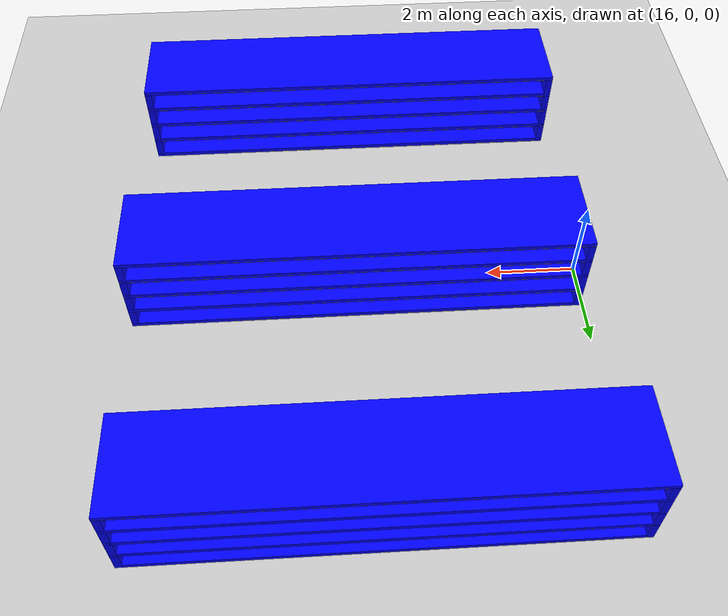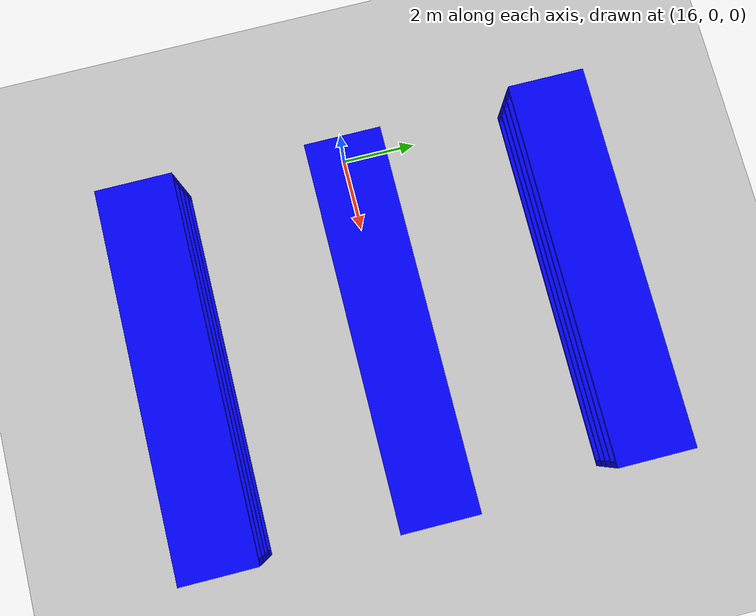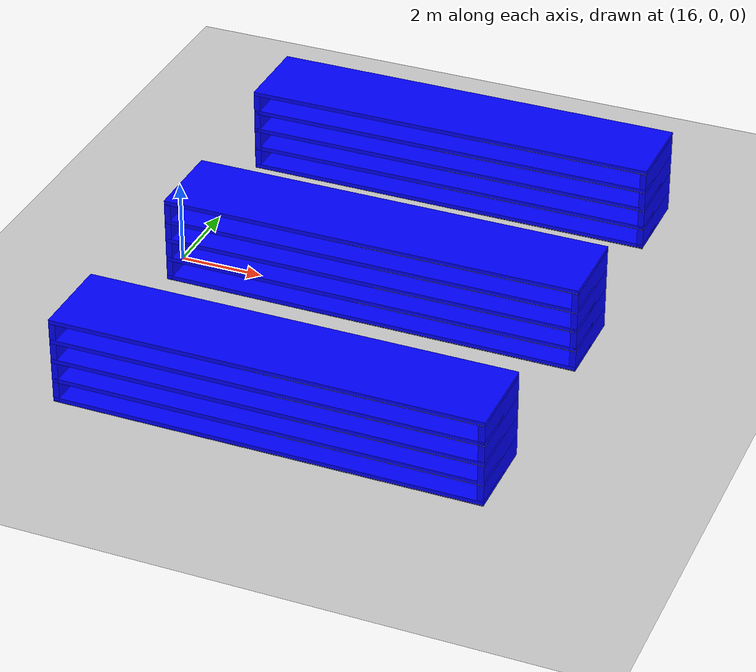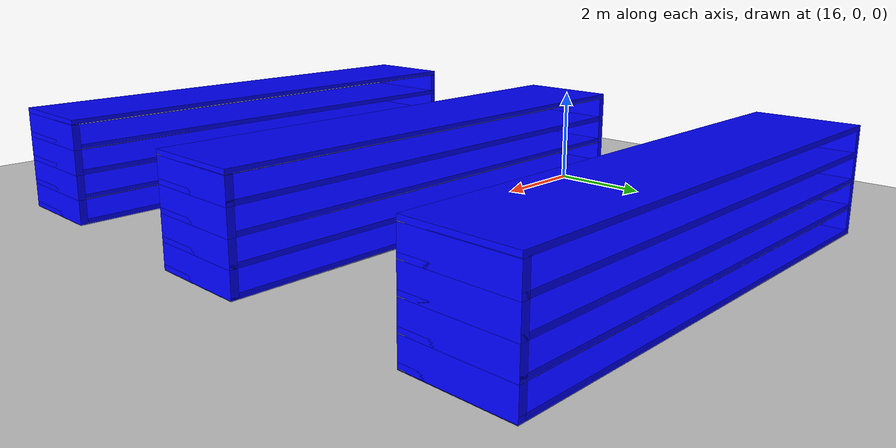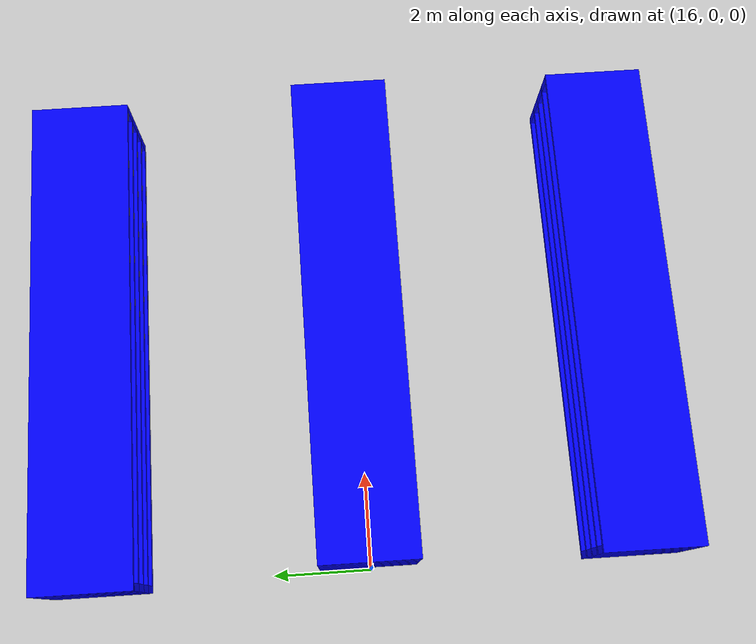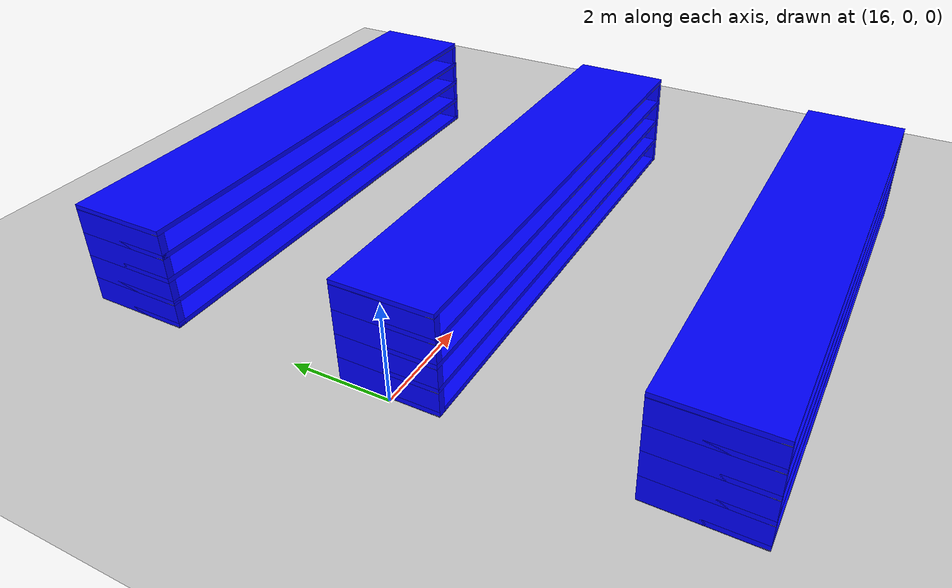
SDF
<sdf version="1.6">
 <world name="default">
  <model name="ground_plane">
   <static>1</static>
   <link name="link">
    <collision name="collision">
     <geometry><plane><normal>0 0 1</normal><size>100 100</size></plane></geometry>
     <surface><friction><ode><mu>100</mu><mu2>50</mu2></ode></friction></surface>
    </collision>
    <visual name="visual">
     <cast_shadows>0</cast_shadows>
     <geometry><plane><normal>0 0 1</normal><size>100 100</size></plane></geometry>
     <material>
      <script><uri>file://media/materials/scripts/gazebo.material</uri><name>Gazebo/Grey</name></script>
     </material>
    </visual>
   </link>
  </model>
  <model name="blue_shelf_3">
   <pose>21.0531 0.048222 0 0 -0 0</pose>
   <link name="Floor_18">
    <collision name="Floor_18_Collision">
     <geometry><box><size>10 2 0.1</size></box></geometry>
     <pose>0 0 0.05 0 -0 0</pose>
    </collision>
    <visual name="Floor_18_Visual">
     <pose>0 0 0.05 0 -0 0</pose>
     <geometry><box><size>10 2 0.1</size></box></geometry>
     <material>
      <script><uri>file://media/materials/scripts/gazebo.material</uri><name>Gazebo/Grey</name></script>
      <ambient>0 0 1 1</ambient>
     </material>
    </visual>
    <pose>0 0 0.01 0 -0 0</pose>
   </link>
   <link name="Floor_23">
    <collision name="Floor_23_Collision">
     <geometry><box><size>10 2 0.1</size></box></geometry>
     <pose>0 0 0.05 0 -0 0</pose>
    </collision>
    <visual name="Floor_23_Visual">
     <pose>0 0 0.05 0 -0 0</pose>
     <geometry><box><size>10 2 0.1</size></box></geometry>
     <material>
      <script><uri>file://media/materials/scripts/gazebo.material</uri><name>Gazebo/Grey</name></script>
      <ambient>0 0 1 1</ambient>
     </material>
    </visual>
    <pose>0 0 0.51 0 -0 0</pose>
   </link>
   <link name="Floor_24">
    <collision name="Floor_24_Collision">
     <geometry><box><size>10 2 0.1</size></box></geometry>
     <pose>0 0 0.05 0 -0 0</pose>
    </collision>
    <visual name="Floor_24_Visual">
     <pose>0 0 0.05 0 -0 0</pose>
     <geometry><box><size>10 2 0.1</size></box></geometry>
     <material>
      <script><uri>file://media/materials/scripts/gazebo.material</uri><name>Gazebo/Grey</name></script>
      <ambient>0 0 1 1</ambient>
     </material>
    </visual>
    <pose>0 0 1.01 0 -0 0</pose>
   </link>
   <link name="Floor_25">
    <collision name="Floor_25_Collision">
     <geometry><box><size>10 2 0.1</size></box></geometry>
     <pose>0 0 0.05 0 -0 0</pose>
    </collision>
    <visual name="Floor_25_Visual">
     <pose>0 0 0.05 0 -0 0</pose>
     <geometry><box><size>10 2 0.1</size></box></geometry>
     <material>
      <script><uri>file://media/materials/scripts/gazebo.material</uri><name>Gazebo/Grey</name></script>
      <ambient>0 0 1 1</ambient>
     </material>
    </visual>
    <pose>0 0 1.51 0 -0 0</pose>
   </link>
   <link name="Floor_26">
    <collision name="Floor_26_Collision">
     <geometry><box><size>10 2 0.1</size></box></geometry>
     <pose>0 0 0.05 0 -0 0</pose>
    </collision>
    <visual name="Floor_26_Visual">
     <pose>0 0 0.05 0 -0 0</pose>
     <geometry><box><size>10 2 0.1</size></box></geometry>
     <material>
      <script><uri>file://media/materials/scripts/gazebo.material</uri><name>Gazebo/Grey</name></script>
      <ambient>0 0 1 1</ambient>
     </material>
    </visual>
    <pose>0 0 2.01 0 -0 0</pose>
   </link>
   <link name="Wall_111">
    <collision name="Wall_111_Collision">
     <geometry><box><size>10 0.15 0.01</size></box></geometry>
     <pose>0 0 0.005 0 -0 0</pose>
    </collision>
    <visual name="Wall_111_Visual">
     <pose>0 0 0.005 0 -0 0</pose>
     <geometry><box><size>10 0.15 0.01</size></box></geometry>
     <material>
      <script><uri>file://media/materials/scripts/gazebo.material</uri><name>Gazebo/Grey</name></script>
      <ambient>1 1 1 1</ambient>
     </material>
    </visual>
    <pose>0 0.925 0.51 0 -0 0</pose>
   </link>
   <link name="Wall_112">
    <collision name="Wall_112_Collision">
     <geometry><box><size>2 0.15 0.5</size></box></geometry>
     <pose>0 0 0.25 0 -0 0</pose>
    </collision>
    <visual name="Wall_112_Visual">
     <pose>0 0 0.25 0 -0 0</pose>
     <geometry><box><size>2 0.15 0.5</size></box></geometry>
     <material>
      <script><uri>file://media/materials/scripts/gazebo.material</uri><name>Gazebo/Grey</name></script>
      <ambient>0 0 1 1</ambient>
     </material>
    </visual>
    <pose>4.925 0 0.51 0 0 -1.5708</pose>
   </link>
   <link name="Wall_113">
    <collision name="Wall_113_Collision">
     <geometry><box><size>10 0.15 0.01</size></box></geometry>
     <pose>0 0 0.005 0 -0 0</pose>
    </collision>
    <visual name="Wall_113_Visual">
     <pose>0 0 0.005 0 -0 0</pose>
     <geometry><box><size>10 0.15 0.01</size></box></geometry>
     <material>
      <script><uri>file://media/materials/scripts/gazebo.material</uri><name>Gazebo/Grey</name></script>
      <ambient>1 1 1 1</ambient>
     </material>
    </visual>
    <pose>0 -0.925 0.51 0 -0 3.14159</pose>
   </link>
   <link name="Wall_114">
    <collision name="Wall_114_Collision">
     <geometry><box><size>2 0.15 0.5</size></box></geometry>
     <pose>0 0 0.25 0 -0 0</pose>
    </collision>
    <visual name="Wall_114_Visual">
     <pose>0 0 0.25 0 -0 0</pose>
     <geometry><box><size>2 0.15 0.5</size></box></geometry>
     <material>
      <script><uri>file://media/materials/scripts/gazebo.material</uri><name>Gazebo/Grey</name></script>
      <ambient>0 0 1 1</ambient>
     </material>
    </visual>
    <pose>-4.925 0 0.51 0 -0 1.5708</pose>
   </link>
   <link name="Wall_115">
    <collision name="Wall_115_Collision">
     <geometry><box><size>10 0.15 0.01</size></box></geometry>
     <pose>0 0 0.005 0 -0 0</pose>
    </collision>
    <visual name="Wall_115_Visual">
     <pose>0 0 0.005 0 -0 0</pose>
     <geometry><box><size>10 0.15 0.01</size></box></geometry>
     <material>
      <script><uri>file://media/materials/scripts/gazebo.material</uri><name>Gazebo/Grey</name></script>
      <ambient>1 1 1 1</ambient>
     </material>
    </visual>
    <pose>0 0.925 1.01 0 -0 0</pose>
   </link>
   <link name="Wall_116">
    <collision name="Wall_116_Collision">
     <geometry><box><size>2 0.15 0.5</size></box></geometry>
     <pose>0 0 0.25 0 -0 0</pose>
    </collision>
    <visual name="Wall_116_Visual">
     <pose>0 0 0.25 0 -0 0</pose>
     <geometry><box><size>2 0.15 0.5</size></box></geometry>
     <material>
      <script><uri>file://media/materials/scripts/gazebo.material</uri><name>Gazebo/Grey</name></script>
      <ambient>0 0 1 1</ambient>
     </material>
    </visual>
    <pose>4.925 0 1.01 0 0 -1.5708</pose>
   </link>
   <link name="Wall_117">
    <collision name="Wall_117_Collision">
     <geometry><box><size>10 0.15 0.01</size></box></geometry>
     <pose>0 0 0.005 0 -0 0</pose>
    </collision>
    <visual name="Wall_117_Visual">
     <pose>0 0 0.005 0 -0 0</pose>
     <geometry><box><size>10 0.15 0.01</size></box></geometry>
     <material>
      <script><uri>file://media/materials/scripts/gazebo.material</uri><name>Gazebo/Grey</name></script>
      <ambient>1 1 1 1</ambient>
     </material>
    </visual>
    <pose>0 -0.925 1.01 0 -0 3.14159</pose>
   </link>
   <link name="Wall_118">
    <collision name="Wall_118_Collision">
     <geometry><box><size>2 0.15 0.5</size></box></geometry>
     <pose>0 0 0.25 0 -0 0</pose>
    </collision>
    <visual name="Wall_118_Visual">
     <pose>0 0 0.25 0 -0 0</pose>
     <geometry><box><size>2 0.15 0.5</size></box></geometry>
     <material>
      <script><uri>file://media/materials/scripts/gazebo.material</uri><name>Gazebo/Grey</name></script>
      <ambient>0 0 1 1</ambient>
     </material>
    </visual>
    <pose>-4.925 0 1.01 0 -0 1.5708</pose>
   </link>
   <link name="Wall_119">
    <collision name="Wall_119_Collision">
     <geometry><box><size>10 0.15 0.01</size></box></geometry>
     <pose>0 0 0.005 0 -0 0</pose>
    </collision>
    <visual name="Wall_119_Visual">
     <pose>0 0 0.005 0 -0 0</pose>
     <geometry><box><size>10 0.15 0.01</size></box></geometry>
     <material>
      <script><uri>file://media/materials/scripts/gazebo.material</uri><name>Gazebo/Grey</name></script>
      <ambient>1 1 1 1</ambient>
     </material>
    </visual>
    <pose>0 0.925 1.51 0 -0 0</pose>
   </link>
   <link name="Wall_120">
    <collision name="Wall_120_Collision">
     <geometry><box><size>2 0.15 0.5</size></box></geometry>
     <pose>0 0 0.25 0 -0 0</pose>
    </collision>
    <visual name="Wall_120_Visual">
     <pose>0 0 0.25 0 -0 0</pose>
     <geometry><box><size>2 0.15 0.5</size></box></geometry>
     <material>
      <script><uri>file://media/materials/scripts/gazebo.material</uri><name>Gazebo/Grey</name></script>
      <ambient>0 0 1 1</ambient>
     </material>
    </visual>
    <pose>4.925 0 1.51 0 0 -1.5708</pose>
   </link>
   <link name="Wall_121">
    <collision name="Wall_121_Collision">
     <geometry><box><size>10 0.15 0.01</size></box></geometry>
     <pose>0 0 0.005 0 -0 0</pose>
    </collision>
    <visual name="Wall_121_Visual">
     <pose>0 0 0.005 0 -0 0</pose>
     <geometry><box><size>10 0.15 0.01</size></box></geometry>
     <material>
      <script><uri>file://media/materials/scripts/gazebo.material</uri><name>Gazebo/Grey</name></script>
      <ambient>1 1 1 1</ambient>
     </material>
    </visual>
    <pose>0 -0.925 1.51 0 -0 3.14159</pose>
   </link>
   <link name="Wall_122">
    <collision name="Wall_122_Collision">
     <geometry><box><size>2 0.15 0.5</size></box></geometry>
     <pose>0 0 0.25 0 -0 0</pose>
    </collision>
    <visual name="Wall_122_Visual">
     <pose>0 0 0.25 0 -0 0</pose>
     <geometry><box><size>2 0.15 0.5</size></box></geometry>
     <material>
      <script><uri>file://media/materials/scripts/gazebo.material</uri><name>Gazebo/Grey</name></script>
      <ambient>0 0 1 1</ambient>
     </material>
    </visual>
    <pose>-4.925 0 1.51 0 -0 1.5708</pose>
   </link>
   <link name="Wall_123">
    <collision name="Wall_123_Collision">
     <geometry><box><size>10 0.15 0.01</size></box></geometry>
     <pose>0 0 0.005 0 -0 0</pose>
    </collision>
    <visual name="Wall_123_Visual">
     <pose>0 0 0.005 0 -0 0</pose>
     <geometry><box><size>10 0.15 0.01</size></box></geometry>
     <material>
      <script><uri>file://media/materials/scripts/gazebo.material</uri><name>Gazebo/Grey</name></script>
      <ambient>1 1 1 1</ambient>
     </material>
    </visual>
    <pose>0 0.925 2.01 0 -0 0</pose>
   </link>
   <link name="Wall_124">
    <collision name="Wall_124_Collision">
     <geometry><box><size>2 0.15 0.01</size></box></geometry>
     <pose>0 0 0.005 0 -0 0</pose>
    </collision>
    <visual name="Wall_124_Visual">
     <pose>0 0 0.005 0 -0 0</pose>
     <geometry><box><size>2 0.15 0.01</size></box></geometry>
     <material>
      <script><uri>file://media/materials/scripts/gazebo.material</uri><name>Gazebo/Grey</name></script>
      <ambient>0 0 1 1</ambient>
     </material>
    </visual>
    <pose>4.925 0 2.01 0 0 -1.5708</pose>
   </link>
   <link name="Wall_125">
    <collision name="Wall_125_Collision">
     <geometry><box><size>10 0.15 0.01</size></box></geometry>
     <pose>0 0 0.005 0 -0 0</pose>
    </collision>
    <visual name="Wall_125_Visual">
     <pose>0 0 0.005 0 -0 0</pose>
     <geometry><box><size>10 0.15 0.01</size></box></geometry>
     <material>
      <script><uri>file://media/materials/scripts/gazebo.material</uri><name>Gazebo/Grey</name></script>
      <ambient>1 1 1 1</ambient>
     </material>
    </visual>
    <pose>0 -0.925 2.01 0 -0 3.14159</pose>
   </link>
   <link name="Wall_126">
    <collision name="Wall_126_Collision">
     <geometry><box><size>2 0.15 0.01</size></box></geometry>
     <pose>0 0 0.005 0 -0 0</pose>
    </collision>
    <visual name="Wall_126_Visual">
     <pose>0 0 0.005 0 -0 0</pose>
     <geometry><box><size>2 0.15 0.01</size></box></geometry>
     <material>
      <script><uri>file://media/materials/scripts/gazebo.material</uri><name>Gazebo/Grey</name></script>
      <ambient>0 0 1 1</ambient>
     </material>
    </visual>
    <pose>-4.925 0 2.01 0 -0 1.5708</pose>
   </link>
   <link name="Wall_60">
    <collision name="Wall_60_Collision">
     <geometry><box><size>10 0.15 0.01</size></box></geometry>
     <pose>0 0 0.005 0 -0 0</pose>
    </collision>
    <visual name="Wall_60_Visual">
     <pose>0 0 0.005 0 -0 0</pose>
     <geometry><box><size>10 0.15 0.01</size></box></geometry>
     <material>
      <script><uri>file://media/materials/scripts/gazebo.material</uri><name>Gazebo/Grey</name></script>
      <ambient>0 0 0.498039 1</ambient>
     </material>
    </visual>
    <pose>0 0.925 0 0 -0 0</pose>
   </link>
   <link name="Wall_61">
    <collision name="Wall_61_Collision">
     <geometry><box><size>2 0.15 0.01</size></box></geometry>
     <pose>0 0 0.005 0 -0 0</pose>
    </collision>
    <visual name="Wall_61_Visual">
     <pose>0 0 0.005 0 -0 0</pose>
     <geometry><box><size>2 0.15 0.01</size></box></geometry>
     <material>
      <script><uri>file://media/materials/scripts/gazebo.material</uri><name>Gazebo/Grey</name></script>
      <ambient>0 0 0.498039 1</ambient>
     </material>
    </visual>
    <pose>4.925 0 0 0 0 -1.5708</pose>
   </link>
   <link name="Wall_62">
    <collision name="Wall_62_Collision">
     <geometry><box><size>10 0.15 0.01</size></box></geometry>
     <pose>0 0 0.005 0 -0 0</pose>
    </collision>
    <visual name="Wall_62_Visual">
     <pose>0 0 0.005 0 -0 0</pose>
     <geometry><box><size>10 0.15 0.01</size></box></geometry>
     <material>
      <script><uri>file://media/materials/scripts/gazebo.material</uri><name>Gazebo/Grey</name></script>
      <ambient>0 0 0.498039 1</ambient>
     </material>
    </visual>
    <pose>0 -0.925 0 0 -0 3.14159</pose>
   </link>
   <link name="Wall_63">
    <collision name="Wall_63_Collision">
     <geometry><box><size>2 0.15 0.01</size></box></geometry>
     <pose>0 0 0.005 0 -0 0</pose>
    </collision>
    <visual name="Wall_63_Visual">
     <pose>0 0 0.005 0 -0 0</pose>
     <geometry><box><size>2 0.15 0.01</size></box></geometry>
     <material>
      <script><uri>file://media/materials/scripts/gazebo.material</uri><name>Gazebo/Grey</name></script>
      <ambient>0 0 0.498039 1</ambient>
     </material>
    </visual>
    <pose>-4.925 0 0 0 -0 1.5708</pose>
   </link>
   <link name="Wall_91">
    <collision name="Wall_91_Collision">
     <geometry><box><size>10 0.15 0.01</size></box></geometry>
     <pose>0 0 0.005 0 -0 0</pose>
    </collision>
    <visual name="Wall_91_Visual">
     <pose>0 0 0.005 0 -0 0</pose>
     <geometry><box><size>10 0.15 0.01</size></box></geometry>
     <material>
      <script><uri>file://media/materials/scripts/gazebo.material</uri><name>Gazebo/Grey</name></script>
      <ambient>1 1 1 1</ambient>
     </material>
    </visual>
    <pose>0 0.925 0.01 0 -0 0</pose>
   </link>
   <link name="Wall_92">
    <collision name="Wall_92_Collision">
     <geometry><box><size>2 0.15 0.5</size></box></geometry>
     <pose>0 0 0.25 0 -0 0</pose>
    </collision>
    <visual name="Wall_92_Visual">
     <pose>0 0 0.25 0 -0 0</pose>
     <geometry><box><size>2 0.15 0.5</size></box></geometry>
     <material>
      <script><uri>file://media/materials/scripts/gazebo.material</uri><name>Gazebo/Grey</name></script>
      <ambient>0 0 1 1</ambient>
     </material>
    </visual>
    <pose>4.925 0 0.01 0 0 -1.5708</pose>
   </link>
   <link name="Wall_93">
    <collision name="Wall_93_Collision">
     <geometry><box><size>10 0.15 0.01</size></box></geometry>
     <pose>0 0 0.005 0 -0 0</pose>
    </collision>
    <visual name="Wall_93_Visual">
     <pose>0 0 0.005 0 -0 0</pose>
     <geometry><box><size>10 0.15 0.01</size></box></geometry>
     <material>
      <script><uri>file://media/materials/scripts/gazebo.material</uri><name>Gazebo/Grey</name></script>
      <ambient>1 1 1 1</ambient>
     </material>
    </visual>
    <pose>0 -0.925 0.01 0 -0 3.14159</pose>
   </link>
   <link name="Wall_94">
    <collision name="Wall_94_Collision">
     <geometry><box><size>2 0.15 0.5</size></box></geometry>
     <pose>0 0 0.25 0 -0 0</pose>
    </collision>
    <visual name="Wall_94_Visual">
     <pose>0 0 0.25 0 -0 0</pose>
     <geometry><box><size>2 0.15 0.5</size></box></geometry>
     <material>
      <script><uri>file://media/materials/scripts/gazebo.material</uri><name>Gazebo/Grey</name></script>
      <ambient>0 0 1 1</ambient>
     </material>
    </visual>
    <pose>-4.925 0 0.01 0 -0 1.5708</pose>
   </link>
   <static>1</static>
  </model>
  <model name="blue_shelf_6">
   <pose>20.8175 5.5113 0 0 -0 0</pose>
   <link name="Floor_18">
    <collision name="Floor_18_Collision">
     <geometry><box><size>10 2 0.1</size></box></geometry>
     <pose>0 0 0.05 0 -0 0</pose>
    </collision>
    <visual name="Floor_18_Visual">
     <pose>0 0 0.05 0 -0 0</pose>
     <geometry><box><size>10 2 0.1</size></box></geometry>
     <material>
      <script><uri>file://media/materials/scripts/gazebo.material</uri><name>Gazebo/Grey</name></script>
      <ambient>0 0 1 1</ambient>
     </material>
    </visual>
    <pose>0 0 0.01 0 -0 0</pose>
   </link>
   <link name="Floor_23">
    <collision name="Floor_23_Collision">
     <geometry><box><size>10 2 0.1</size></box></geometry>
     <pose>0 0 0.05 0 -0 0</pose>
    </collision>
    <visual name="Floor_23_Visual">
     <pose>0 0 0.05 0 -0 0</pose>
     <geometry><box><size>10 2 0.1</size></box></geometry>
     <material>
      <script><uri>file://media/materials/scripts/gazebo.material</uri><name>Gazebo/Grey</name></script>
      <ambient>0 0 1 1</ambient>
     </material>
    </visual>
    <pose>0 0 0.51 0 -0 0</pose>
   </link>
   <link name="Floor_24">
    <collision name="Floor_24_Collision">
     <geometry><box><size>10 2 0.1</size></box></geometry>
     <pose>0 0 0.05 0 -0 0</pose>
    </collision>
    <visual name="Floor_24_Visual">
     <pose>0 0 0.05 0 -0 0</pose>
     <geometry><box><size>10 2 0.1</size></box></geometry>
     <material>
      <script><uri>file://media/materials/scripts/gazebo.material</uri><name>Gazebo/Grey</name></script>
      <ambient>0 0 1 1</ambient>
     </material>
    </visual>
    <pose>0 0 1.01 0 -0 0</pose>
   </link>
   <link name="Floor_25">
    <collision name="Floor_25_Collision">
     <geometry><box><size>10 2 0.1</size></box></geometry>
     <pose>0 0 0.05 0 -0 0</pose>
    </collision>
    <visual name="Floor_25_Visual">
     <pose>0 0 0.05 0 -0 0</pose>
     <geometry><box><size>10 2 0.1</size></box></geometry>
     <material>
      <script><uri>file://media/materials/scripts/gazebo.material</uri><name>Gazebo/Grey</name></script>
      <ambient>0 0 1 1</ambient>
     </material>
    </visual>
    <pose>0 0 1.51 0 -0 0</pose>
   </link>
   <link name="Floor_26">
    <collision name="Floor_26_Collision">
     <geometry><box><size>10 2 0.1</size></box></geometry>
     <pose>0 0 0.05 0 -0 0</pose>
    </collision>
    <visual name="Floor_26_Visual">
     <pose>0 0 0.05 0 -0 0</pose>
     <geometry><box><size>10 2 0.1</size></box></geometry>
     <material>
      <script><uri>file://media/materials/scripts/gazebo.material</uri><name>Gazebo/Grey</name></script>
      <ambient>0 0 1 1</ambient>
     </material>
    </visual>
    <pose>0 0 2.01 0 -0 0</pose>
   </link>
   <link name="Wall_111">
    <collision name="Wall_111_Collision">
     <geometry><box><size>10 0.15 0.01</size></box></geometry>
     <pose>0 0 0.005 0 -0 0</pose>
    </collision>
    <visual name="Wall_111_Visual">
     <pose>0 0 0.005 0 -0 0</pose>
     <geometry><box><size>10 0.15 0.01</size></box></geometry>
     <material>
      <script><uri>file://media/materials/scripts/gazebo.material</uri><name>Gazebo/Grey</name></script>
      <ambient>1 1 1 1</ambient>
     </material>
    </visual>
    <pose>0 0.925 0.51 0 -0 0</pose>
   </link>
   <link name="Wall_112">
    <collision name="Wall_112_Collision">
     <geometry><box><size>2 0.15 0.5</size></box></geometry>
     <pose>0 0 0.25 0 -0 0</pose>
    </collision>
    <visual name="Wall_112_Visual">
     <pose>0 0 0.25 0 -0 0</pose>
     <geometry><box><size>2 0.15 0.5</size></box></geometry>
     <material>
      <script><uri>file://media/materials/scripts/gazebo.material</uri><name>Gazebo/Grey</name></script>
      <ambient>0 0 1 1</ambient>
     </material>
    </visual>
    <pose>4.925 0 0.51 0 0 -1.5708</pose>
   </link>
   <link name="Wall_113">
    <collision name="Wall_113_Collision">
     <geometry><box><size>10 0.15 0.01</size></box></geometry>
     <pose>0 0 0.005 0 -0 0</pose>
    </collision>
    <visual name="Wall_113_Visual">
     <pose>0 0 0.005 0 -0 0</pose>
     <geometry><box><size>10 0.15 0.01</size></box></geometry>
     <material>
      <script><uri>file://media/materials/scripts/gazebo.material</uri><name>Gazebo/Grey</name></script>
      <ambient>1 1 1 1</ambient>
     </material>
    </visual>
    <pose>0 -0.925 0.51 0 -0 3.14159</pose>
   </link>
   <link name="Wall_114">
    <collision name="Wall_114_Collision">
     <geometry><box><size>2 0.15 0.5</size></box></geometry>
     <pose>0 0 0.25 0 -0 0</pose>
    </collision>
    <visual name="Wall_114_Visual">
     <pose>0 0 0.25 0 -0 0</pose>
     <geometry><box><size>2 0.15 0.5</size></box></geometry>
     <material>
      <script><uri>file://media/materials/scripts/gazebo.material</uri><name>Gazebo/Grey</name></script>
      <ambient>0 0 1 1</ambient>
     </material>
    </visual>
    <pose>-4.925 0 0.51 0 -0 1.5708</pose>
   </link>
   <link name="Wall_115">
    <collision name="Wall_115_Collision">
     <geometry><box><size>10 0.15 0.01</size></box></geometry>
     <pose>0 0 0.005 0 -0 0</pose>
    </collision>
    <visual name="Wall_115_Visual">
     <pose>0 0 0.005 0 -0 0</pose>
     <geometry><box><size>10 0.15 0.01</size></box></geometry>
     <material>
      <script><uri>file://media/materials/scripts/gazebo.material</uri><name>Gazebo/Grey</name></script>
      <ambient>1 1 1 1</ambient>
     </material>
    </visual>
    <pose>0 0.925 1.01 0 -0 0</pose>
   </link>
   <link name="Wall_116">
    <collision name="Wall_116_Collision">
     <geometry><box><size>2 0.15 0.5</size></box></geometry>
     <pose>0 0 0.25 0 -0 0</pose>
    </collision>
    <visual name="Wall_116_Visual">
     <pose>0 0 0.25 0 -0 0</pose>
     <geometry><box><size>2 0.15 0.5</size></box></geometry>
     <material>
      <script><uri>file://media/materials/scripts/gazebo.material</uri><name>Gazebo/Grey</name></script>
      <ambient>0 0 1 1</ambient>
     </material>
    </visual>
    <pose>4.925 0 1.01 0 0 -1.5708</pose>
   </link>
   <link name="Wall_117">
    <collision name="Wall_117_Collision">
     <geometry><box><size>10 0.15 0.01</size></box></geometry>
     <pose>0 0 0.005 0 -0 0</pose>
    </collision>
    <visual name="Wall_117_Visual">
     <pose>0 0 0.005 0 -0 0</pose>
     <geometry><box><size>10 0.15 0.01</size></box></geometry>
     <material>
      <script><uri>file://media/materials/scripts/gazebo.material</uri><name>Gazebo/Grey</name></script>
      <ambient>1 1 1 1</ambient>
     </material>
    </visual>
    <pose>0 -0.925 1.01 0 -0 3.14159</pose>
   </link>
   <link name="Wall_118">
    <collision name="Wall_118_Collision">
     <geometry><box><size>2 0.15 0.5</size></box></geometry>
     <pose>0 0 0.25 0 -0 0</pose>
    </collision>
    <visual name="Wall_118_Visual">
     <pose>0 0 0.25 0 -0 0</pose>
     <geometry><box><size>2 0.15 0.5</size></box></geometry>
     <material>
      <script><uri>file://media/materials/scripts/gazebo.material</uri><name>Gazebo/Grey</name></script>
      <ambient>0 0 1 1</ambient>
     </material>
    </visual>
    <pose>-4.925 0 1.01 0 -0 1.5708</pose>
   </link>
   <link name="Wall_119">
    <collision name="Wall_119_Collision">
     <geometry><box><size>10 0.15 0.01</size></box></geometry>
     <pose>0 0 0.005 0 -0 0</pose>
    </collision>
    <visual name="Wall_119_Visual">
     <pose>0 0 0.005 0 -0 0</pose>
     <geometry><box><size>10 0.15 0.01</size></box></geometry>
     <material>
      <script><uri>file://media/materials/scripts/gazebo.material</uri><name>Gazebo/Grey</name></script>
      <ambient>1 1 1 1</ambient>
     </material>
    </visual>
    <pose>0 0.925 1.51 0 -0 0</pose>
   </link>
   <link name="Wall_120">
    <collision name="Wall_120_Collision">
     <geometry><box><size>2 0.15 0.5</size></box></geometry>
     <pose>0 0 0.25 0 -0 0</pose>
    </collision>
    <visual name="Wall_120_Visual">
     <pose>0 0 0.25 0 -0 0</pose>
     <geometry><box><size>2 0.15 0.5</size></box></geometry>
     <material>
      <script><uri>file://media/materials/scripts/gazebo.material</uri><name>Gazebo/Grey</name></script>
      <ambient>0 0 1 1</ambient>
     </material>
    </visual>
    <pose>4.925 0 1.51 0 0 -1.5708</pose>
   </link>
   <link name="Wall_121">
    <collision name="Wall_121_Collision">
     <geometry><box><size>10 0.15 0.01</size></box></geometry>
     <pose>0 0 0.005 0 -0 0</pose>
    </collision>
    <visual name="Wall_121_Visual">
     <pose>0 0 0.005 0 -0 0</pose>
     <geometry><box><size>10 0.15 0.01</size></box></geometry>
     <material>
      <script><uri>file://media/materials/scripts/gazebo.material</uri><name>Gazebo/Grey</name></script>
      <ambient>1 1 1 1</ambient>
     </material>
    </visual>
    <pose>0 -0.925 1.51 0 -0 3.14159</pose>
   </link>
   <link name="Wall_122">
    <collision name="Wall_122_Collision">
     <geometry><box><size>2 0.15 0.5</size></box></geometry>
     <pose>0 0 0.25 0 -0 0</pose>
    </collision>
    <visual name="Wall_122_Visual">
     <pose>0 0 0.25 0 -0 0</pose>
     <geometry><box><size>2 0.15 0.5</size></box></geometry>
     <material>
      <script><uri>file://media/materials/scripts/gazebo.material</uri><name>Gazebo/Grey</name></script>
      <ambient>0 0 1 1</ambient>
     </material>
    </visual>
    <pose>-4.925 0 1.51 0 -0 1.5708</pose>
   </link>
   <link name="Wall_123">
    <collision name="Wall_123_Collision">
     <geometry><box><size>10 0.15 0.01</size></box></geometry>
     <pose>0 0 0.005 0 -0 0</pose>
    </collision>
    <visual name="Wall_123_Visual">
     <pose>0 0 0.005 0 -0 0</pose>
     <geometry><box><size>10 0.15 0.01</size></box></geometry>
     <material>
      <script><uri>file://media/materials/scripts/gazebo.material</uri><name>Gazebo/Grey</name></script>
      <ambient>1 1 1 1</ambient>
     </material>
    </visual>
    <pose>0 0.925 2.01 0 -0 0</pose>
   </link>
   <link name="Wall_124">
    <collision name="Wall_124_Collision">
     <geometry><box><size>2 0.15 0.01</size></box></geometry>
     <pose>0 0 0.005 0 -0 0</pose>
    </collision>
    <visual name="Wall_124_Visual">
     <pose>0 0 0.005 0 -0 0</pose>
     <geometry><box><size>2 0.15 0.01</size></box></geometry>
     <material>
      <script><uri>file://media/materials/scripts/gazebo.material</uri><name>Gazebo/Grey</name></script>
      <ambient>0 0 1 1</ambient>
     </material>
    </visual>
    <pose>4.925 0 2.01 0 0 -1.5708</pose>
   </link>
   <link name="Wall_125">
    <collision name="Wall_125_Collision">
     <geometry><box><size>10 0.15 0.01</size></box></geometry>
     <pose>0 0 0.005 0 -0 0</pose>
    </collision>
    <visual name="Wall_125_Visual">
     <pose>0 0 0.005 0 -0 0</pose>
     <geometry><box><size>10 0.15 0.01</size></box></geometry>
     <material>
      <script><uri>file://media/materials/scripts/gazebo.material</uri><name>Gazebo/Grey</name></script>
      <ambient>1 1 1 1</ambient>
     </material>
    </visual>
    <pose>0 -0.925 2.01 0 -0 3.14159</pose>
   </link>
   <link name="Wall_126">
    <collision name="Wall_126_Collision">
     <geometry><box><size>2 0.15 0.01</size></box></geometry>
     <pose>0 0 0.005 0 -0 0</pose>
    </collision>
    <visual name="Wall_126_Visual">
     <pose>0 0 0.005 0 -0 0</pose>
     <geometry><box><size>2 0.15 0.01</size></box></geometry>
     <material>
      <script><uri>file://media/materials/scripts/gazebo.material</uri><name>Gazebo/Grey</name></script>
      <ambient>0 0 1 1</ambient>
     </material>
    </visual>
    <pose>-4.925 0 2.01 0 -0 1.5708</pose>
   </link>
   <link name="Wall_60">
    <collision name="Wall_60_Collision">
     <geometry><box><size>10 0.15 0.01</size></box></geometry>
     <pose>0 0 0.005 0 -0 0</pose>
    </collision>
    <visual name="Wall_60_Visual">
     <pose>0 0 0.005 0 -0 0</pose>
     <geometry><box><size>10 0.15 0.01</size></box></geometry>
     <material>
      <script><uri>file://media/materials/scripts/gazebo.material</uri><name>Gazebo/Grey</name></script>
      <ambient>0 0 0.498039 1</ambient>
     </material>
    </visual>
    <pose>0 0.925 0 0 -0 0</pose>
   </link>
   <link name="Wall_61">
    <collision name="Wall_61_Collision">
     <geometry><box><size>2 0.15 0.01</size></box></geometry>
     <pose>0 0 0.005 0 -0 0</pose>
    </collision>
    <visual name="Wall_61_Visual">
     <pose>0 0 0.005 0 -0 0</pose>
     <geometry><box><size>2 0.15 0.01</size></box></geometry>
     <material>
      <script><uri>file://media/materials/scripts/gazebo.material</uri><name>Gazebo/Grey</name></script>
      <ambient>0 0 0.498039 1</ambient>
     </material>
    </visual>
    <pose>4.925 0 0 0 0 -1.5708</pose>
   </link>
   <link name="Wall_62">
    <collision name="Wall_62_Collision">
     <geometry><box><size>10 0.15 0.01</size></box></geometry>
     <pose>0 0 0.005 0 -0 0</pose>
    </collision>
    <visual name="Wall_62_Visual">
     <pose>0 0 0.005 0 -0 0</pose>
     <geometry><box><size>10 0.15 0.01</size></box></geometry>
     <material>
      <script><uri>file://media/materials/scripts/gazebo.material</uri><name>Gazebo/Grey</name></script>
      <ambient>0 0 0.498039 1</ambient>
     </material>
    </visual>
    <pose>0 -0.925 0 0 -0 3.14159</pose>
   </link>
   <link name="Wall_63">
    <collision name="Wall_63_Collision">
     <geometry><box><size>2 0.15 0.01</size></box></geometry>
     <pose>0 0 0.005 0 -0 0</pose>
    </collision>
    <visual name="Wall_63_Visual">
     <pose>0 0 0.005 0 -0 0</pose>
     <geometry><box><size>2 0.15 0.01</size></box></geometry>
     <material>
      <script><uri>file://media/materials/scripts/gazebo.material</uri><name>Gazebo/Grey</name></script>
      <ambient>0 0 0.498039 1</ambient>
     </material>
    </visual>
    <pose>-4.925 0 0 0 -0 1.5708</pose>
   </link>
   <link name="Wall_91">
    <collision name="Wall_91_Collision">
     <geometry><box><size>10 0.15 0.01</size></box></geometry>
     <pose>0 0 0.005 0 -0 0</pose>
    </collision>
    <visual name="Wall_91_Visual">
     <pose>0 0 0.005 0 -0 0</pose>
     <geometry><box><size>10 0.15 0.01</size></box></geometry>
     <material>
      <script><uri>file://media/materials/scripts/gazebo.material</uri><name>Gazebo/Grey</name></script>
      <ambient>1 1 1 1</ambient>
     </material>
    </visual>
    <pose>0 0.925 0.01 0 -0 0</pose>
   </link>
   <link name="Wall_92">
    <collision name="Wall_92_Collision">
     <geometry><box><size>2 0.15 0.5</size></box></geometry>
     <pose>0 0 0.25 0 -0 0</pose>
    </collision>
    <visual name="Wall_92_Visual">
     <pose>0 0 0.25 0 -0 0</pose>
     <geometry><box><size>2 0.15 0.5</size></box></geometry>
     <material>
      <script><uri>file://media/materials/scripts/gazebo.material</uri><name>Gazebo/Grey</name></script>
      <ambient>0 0 1 1</ambient>
     </material>
    </visual>
    <pose>4.925 0 0.01 0 0 -1.5708</pose>
   </link>
   <link name="Wall_93">
    <collision name="Wall_93_Collision">
     <geometry><box><size>10 0.15 0.01</size></box></geometry>
     <pose>0 0 0.005 0 -0 0</pose>
    </collision>
    <visual name="Wall_93_Visual">
     <pose>0 0 0.005 0 -0 0</pose>
     <geometry><box><size>10 0.15 0.01</size></box></geometry>
     <material>
      <script><uri>file://media/materials/scripts/gazebo.material</uri><name>Gazebo/Grey</name></script>
      <ambient>1 1 1 1</ambient>
     </material>
    </visual>
    <pose>0 -0.925 0.01 0 -0 3.14159</pose>
   </link>
   <link name="Wall_94">
    <collision name="Wall_94_Collision">
     <geometry><box><size>2 0.15 0.5</size></box></geometry>
     <pose>0 0 0.25 0 -0 0</pose>
    </collision>
    <visual name="Wall_94_Visual">
     <pose>0 0 0.25 0 -0 0</pose>
     <geometry><box><size>2 0.15 0.5</size></box></geometry>
     <material>
      <script><uri>file://media/materials/scripts/gazebo.material</uri><name>Gazebo/Grey</name></script>
      <ambient>0 0 1 1</ambient>
     </material>
    </visual>
    <pose>-4.925 0 0.01 0 -0 1.5708</pose>
   </link>
   <static>1</static>
  </model>
  <model name="blue_shelf_7">
   <pose>20.9392 -5.3734 0 0 -0 0</pose>
   <link name="Floor_18">
    <collision name="Floor_18_Collision">
     <geometry><box><size>10 2 0.1</size></box></geometry>
     <pose>0 0 0.05 0 -0 0</pose>
    </collision>
    <visual name="Floor_18_Visual">
     <pose>0 0 0.05 0 -0 0</pose>
     <geometry><box><size>10 2 0.1</size></box></geometry>
     <material>
      <script><uri>file://media/materials/scripts/gazebo.material</uri><name>Gazebo/Grey</name></script>
      <ambient>0 0 1 1</ambient>
     </material>
    </visual>
    <pose>0 0 0.01 0 -0 0</pose>
   </link>
   <link name="Floor_23">
    <collision name="Floor_23_Collision">
     <geometry><box><size>10 2 0.1</size></box></geometry>
     <pose>0 0 0.05 0 -0 0</pose>
    </collision>
    <visual name="Floor_23_Visual">
     <pose>0 0 0.05 0 -0 0</pose>
     <geometry><box><size>10 2 0.1</size></box></geometry>
     <material>
      <script><uri>file://media/materials/scripts/gazebo.material</uri><name>Gazebo/Grey</name></script>
      <ambient>0 0 1 1</ambient>
     </material>
    </visual>
    <pose>0 0 0.51 0 -0 0</pose>
   </link>
   <link name="Floor_24">
    <collision name="Floor_24_Collision">
     <geometry><box><size>10 2 0.1</size></box></geometry>
     <pose>0 0 0.05 0 -0 0</pose>
    </collision>
    <visual name="Floor_24_Visual">
     <pose>0 0 0.05 0 -0 0</pose>
     <geometry><box><size>10 2 0.1</size></box></geometry>
     <material>
      <script><uri>file://media/materials/scripts/gazebo.material</uri><name>Gazebo/Grey</name></script>
      <ambient>0 0 1 1</ambient>
     </material>
    </visual>
    <pose>0 0 1.01 0 -0 0</pose>
   </link>
   <link name="Floor_25">
    <collision name="Floor_25_Collision">
     <geometry><box><size>10 2 0.1</size></box></geometry>
     <pose>0 0 0.05 0 -0 0</pose>
    </collision>
    <visual name="Floor_25_Visual">
     <pose>0 0 0.05 0 -0 0</pose>
     <geometry><box><size>10 2 0.1</size></box></geometry>
     <material>
      <script><uri>file://media/materials/scripts/gazebo.material</uri><name>Gazebo/Grey</name></script>
      <ambient>0 0 1 1</ambient>
     </material>
    </visual>
    <pose>0 0 1.51 0 -0 0</pose>
   </link>
   <link name="Floor_26">
    <collision name="Floor_26_Collision">
     <geometry><box><size>10 2 0.1</size></box></geometry>
     <pose>0 0 0.05 0 -0 0</pose>
    </collision>
    <visual name="Floor_26_Visual">
     <pose>0 0 0.05 0 -0 0</pose>
     <geometry><box><size>10 2 0.1</size></box></geometry>
     <material>
      <script><uri>file://media/materials/scripts/gazebo.material</uri><name>Gazebo/Grey</name></script>
      <ambient>0 0 1 1</ambient>
     </material>
    </visual>
    <pose>0 0 2.01 0 -0 0</pose>
   </link>
   <link name="Wall_111">
    <collision name="Wall_111_Collision">
     <geometry><box><size>10 0.15 0.01</size></box></geometry>
     <pose>0 0 0.005 0 -0 0</pose>
    </collision>
    <visual name="Wall_111_Visual">
     <pose>0 0 0.005 0 -0 0</pose>
     <geometry><box><size>10 0.15 0.01</size></box></geometry>
     <material>
      <script><uri>file://media/materials/scripts/gazebo.material</uri><name>Gazebo/Grey</name></script>
      <ambient>1 1 1 1</ambient>
     </material>
    </visual>
    <pose>0 0.925 0.51 0 -0 0</pose>
   </link>
   <link name="Wall_112">
    <collision name="Wall_112_Collision">
     <geometry><box><size>2 0.15 0.5</size></box></geometry>
     <pose>0 0 0.25 0 -0 0</pose>
    </collision>
    <visual name="Wall_112_Visual">
     <pose>0 0 0.25 0 -0 0</pose>
     <geometry><box><size>2 0.15 0.5</size></box></geometry>
     <material>
      <script><uri>file://media/materials/scripts/gazebo.material</uri><name>Gazebo/Grey</name></script>
      <ambient>0 0 1 1</ambient>
     </material>
    </visual>
    <pose>4.925 0 0.51 0 0 -1.5708</pose>
   </link>
   <link name="Wall_113">
    <collision name="Wall_113_Collision">
     <geometry><box><size>10 0.15 0.01</size></box></geometry>
     <pose>0 0 0.005 0 -0 0</pose>
    </collision>
    <visual name="Wall_113_Visual">
     <pose>0 0 0.005 0 -0 0</pose>
     <geometry><box><size>10 0.15 0.01</size></box></geometry>
     <material>
      <script><uri>file://media/materials/scripts/gazebo.material</uri><name>Gazebo/Grey</name></script>
      <ambient>1 1 1 1</ambient>
     </material>
    </visual>
    <pose>0 -0.925 0.51 0 -0 3.14159</pose>
   </link>
   <link name="Wall_114">
    <collision name="Wall_114_Collision">
     <geometry><box><size>2 0.15 0.5</size></box></geometry>
     <pose>0 0 0.25 0 -0 0</pose>
    </collision>
    <visual name="Wall_114_Visual">
     <pose>0 0 0.25 0 -0 0</pose>
     <geometry><box><size>2 0.15 0.5</size></box></geometry>
     <material>
      <script><uri>file://media/materials/scripts/gazebo.material</uri><name>Gazebo/Grey</name></script>
      <ambient>0 0 1 1</ambient>
     </material>
    </visual>
    <pose>-4.925 0 0.51 0 -0 1.5708</pose>
   </link>
   <link name="Wall_115">
    <collision name="Wall_115_Collision">
     <geometry><box><size>10 0.15 0.01</size></box></geometry>
     <pose>0 0 0.005 0 -0 0</pose>
    </collision>
    <visual name="Wall_115_Visual">
     <pose>0 0 0.005 0 -0 0</pose>
     <geometry><box><size>10 0.15 0.01</size></box></geometry>
     <material>
      <script><uri>file://media/materials/scripts/gazebo.material</uri><name>Gazebo/Grey</name></script>
      <ambient>1 1 1 1</ambient>
     </material>
    </visual>
    <pose>0 0.925 1.01 0 -0 0</pose>
   </link>
   <link name="Wall_116">
    <collision name="Wall_116_Collision">
     <geometry><box><size>2 0.15 0.5</size></box></geometry>
     <pose>0 0 0.25 0 -0 0</pose>
    </collision>
    <visual name="Wall_116_Visual">
     <pose>0 0 0.25 0 -0 0</pose>
     <geometry><box><size>2 0.15 0.5</size></box></geometry>
     <material>
      <script><uri>file://media/materials/scripts/gazebo.material</uri><name>Gazebo/Grey</name></script>
      <ambient>0 0 1 1</ambient>
     </material>
    </visual>
    <pose>4.925 0 1.01 0 0 -1.5708</pose>
   </link>
   <link name="Wall_117">
    <collision name="Wall_117_Collision">
     <geometry><box><size>10 0.15 0.01</size></box></geometry>
     <pose>0 0 0.005 0 -0 0</pose>
    </collision>
    <visual name="Wall_117_Visual">
     <pose>0 0 0.005 0 -0 0</pose>
     <geometry><box><size>10 0.15 0.01</size></box></geometry>
     <material>
      <script><uri>file://media/materials/scripts/gazebo.material</uri><name>Gazebo/Grey</name></script>
      <ambient>1 1 1 1</ambient>
     </material>
    </visual>
    <pose>0 -0.925 1.01 0 -0 3.14159</pose>
   </link>
   <link name="Wall_118">
    <collision name="Wall_118_Collision">
     <geometry><box><size>2 0.15 0.5</size></box></geometry>
     <pose>0 0 0.25 0 -0 0</pose>
    </collision>
    <visual name="Wall_118_Visual">
     <pose>0 0 0.25 0 -0 0</pose>
     <geometry><box><size>2 0.15 0.5</size></box></geometry>
     <material>
      <script><uri>file://media/materials/scripts/gazebo.material</uri><name>Gazebo/Grey</name></script>
      <ambient>0 0 1 1</ambient>
     </material>
    </visual>
    <pose>-4.925 0 1.01 0 -0 1.5708</pose>
   </link>
   <link name="Wall_119">
    <collision name="Wall_119_Collision">
     <geometry><box><size>10 0.15 0.01</size></box></geometry>
     <pose>0 0 0.005 0 -0 0</pose>
    </collision>
    <visual name="Wall_119_Visual">
     <pose>0 0 0.005 0 -0 0</pose>
     <geometry><box><size>10 0.15 0.01</size></box></geometry>
     <material>
      <script><uri>file://media/materials/scripts/gazebo.material</uri><name>Gazebo/Grey</name></script>
      <ambient>1 1 1 1</ambient>
     </material>
    </visual>
    <pose>0 0.925 1.51 0 -0 0</pose>
   </link>
   <link name="Wall_120">
    <collision name="Wall_120_Collision">
     <geometry><box><size>2 0.15 0.5</size></box></geometry>
     <pose>0 0 0.25 0 -0 0</pose>
    </collision>
    <visual name="Wall_120_Visual">
     <pose>0 0 0.25 0 -0 0</pose>
     <geometry><box><size>2 0.15 0.5</size></box></geometry>
     <material>
      <script><uri>file://media/materials/scripts/gazebo.material</uri><name>Gazebo/Grey</name></script>
      <ambient>0 0 1 1</ambient>
     </material>
    </visual>
    <pose>4.925 0 1.51 0 0 -1.5708</pose>
   </link>
   <link name="Wall_121">
    <collision name="Wall_121_Collision">
     <geometry><box><size>10 0.15 0.01</size></box></geometry>
     <pose>0 0 0.005 0 -0 0</pose>
    </collision>
    <visual name="Wall_121_Visual">
     <pose>0 0 0.005 0 -0 0</pose>
     <geometry><box><size>10 0.15 0.01</size></box></geometry>
     <material>
      <script><uri>file://media/materials/scripts/gazebo.material</uri><name>Gazebo/Grey</name></script>
      <ambient>1 1 1 1</ambient>
     </material>
    </visual>
    <pose>0 -0.925 1.51 0 -0 3.14159</pose>
   </link>
   <link name="Wall_122">
    <collision name="Wall_122_Collision">
     <geometry><box><size>2 0.15 0.5</size></box></geometry>
     <pose>0 0 0.25 0 -0 0</pose>
    </collision>
    <visual name="Wall_122_Visual">
     <pose>0 0 0.25 0 -0 0</pose>
     <geometry><box><size>2 0.15 0.5</size></box></geometry>
     <material>
      <script><uri>file://media/materials/scripts/gazebo.material</uri><name>Gazebo/Grey</name></script>
      <ambient>0 0 1 1</ambient>
     </material>
    </visual>
    <pose>-4.925 0 1.51 0 -0 1.5708</pose>
   </link>
   <link name="Wall_123">
    <collision name="Wall_123_Collision">
     <geometry><box><size>10 0.15 0.01</size></box></geometry>
     <pose>0 0 0.005 0 -0 0</pose>
    </collision>
    <visual name="Wall_123_Visual">
     <pose>0 0 0.005 0 -0 0</pose>
     <geometry><box><size>10 0.15 0.01</size></box></geometry>
     <material>
      <script><uri>file://media/materials/scripts/gazebo.material</uri><name>Gazebo/Grey</name></script>
      <ambient>1 1 1 1</ambient>
     </material>
    </visual>
    <pose>0 0.925 2.01 0 -0 0</pose>
   </link>
   <link name="Wall_124">
    <collision name="Wall_124_Collision">
     <geometry><box><size>2 0.15 0.01</size></box></geometry>
     <pose>0 0 0.005 0 -0 0</pose>
    </collision>
    <visual name="Wall_124_Visual">
     <pose>0 0 0.005 0 -0 0</pose>
     <geometry><box><size>2 0.15 0.01</size></box></geometry>
     <material>
      <script><uri>file://media/materials/scripts/gazebo.material</uri><name>Gazebo/Grey</name></script>
      <ambient>0 0 1 1</ambient>
     </material>
    </visual>
    <pose>4.925 0 2.01 0 0 -1.5708</pose>
   </link>
   <link name="Wall_125">
    <collision name="Wall_125_Collision">
     <geometry><box><size>10 0.15 0.01</size></box></geometry>
     <pose>0 0 0.005 0 -0 0</pose>
    </collision>
    <visual name="Wall_125_Visual">
     <pose>0 0 0.005 0 -0 0</pose>
     <geometry><box><size>10 0.15 0.01</size></box></geometry>
     <material>
      <script><uri>file://media/materials/scripts/gazebo.material</uri><name>Gazebo/Grey</name></script>
      <ambient>1 1 1 1</ambient>
     </material>
    </visual>
    <pose>0 -0.925 2.01 0 -0 3.14159</pose>
   </link>
   <link name="Wall_126">
    <collision name="Wall_126_Collision">
     <geometry><box><size>2 0.15 0.01</size></box></geometry>
     <pose>0 0 0.005 0 -0 0</pose>
    </collision>
    <visual name="Wall_126_Visual">
     <pose>0 0 0.005 0 -0 0</pose>
     <geometry><box><size>2 0.15 0.01</size></box></geometry>
     <material>
      <script><uri>file://media/materials/scripts/gazebo.material</uri><name>Gazebo/Grey</name></script>
      <ambient>0 0 1 1</ambient>
     </material>
    </visual>
    <pose>-4.925 0 2.01 0 -0 1.5708</pose>
   </link>
   <link name="Wall_60">
    <collision name="Wall_60_Collision">
     <geometry><box><size>10 0.15 0.01</size></box></geometry>
     <pose>0 0 0.005 0 -0 0</pose>
    </collision>
    <visual name="Wall_60_Visual">
     <pose>0 0 0.005 0 -0 0</pose>
     <geometry><box><size>10 0.15 0.01</size></box></geometry>
     <material>
      <script><uri>file://media/materials/scripts/gazebo.material</uri><name>Gazebo/Grey</name></script>
      <ambient>0 0 0.498039 1</ambient>
     </material>
    </visual>
    <pose>0 0.925 0 0 -0 0</pose>
   </link>
   <link name="Wall_61">
    <collision name="Wall_61_Collision">
     <geometry><box><size>2 0.15 0.01</size></box></geometry>
     <pose>0 0 0.005 0 -0 0</pose>
    </collision>
    <visual name="Wall_61_Visual">
     <pose>0 0 0.005 0 -0 0</pose>
     <geometry><box><size>2 0.15 0.01</size></box></geometry>
     <material>
      <script><uri>file://media/materials/scripts/gazebo.material</uri><name>Gazebo/Grey</name></script>
      <ambient>0 0 0.498039 1</ambient>
     </material>
    </visual>
    <pose>4.925 0 0 0 0 -1.5708</pose>
   </link>
   <link name="Wall_62">
    <collision name="Wall_62_Collision">
     <geometry><box><size>10 0.15 0.01</size></box></geometry>
     <pose>0 0 0.005 0 -0 0</pose>
    </collision>
    <visual name="Wall_62_Visual">
     <pose>0 0 0.005 0 -0 0</pose>
     <geometry><box><size>10 0.15 0.01</size></box></geometry>
     <material>
      <script><uri>file://media/materials/scripts/gazebo.material</uri><name>Gazebo/Grey</name></script>
      <ambient>0 0 0.498039 1</ambient>
     </material>
    </visual>
    <pose>0 -0.925 0 0 -0 3.14159</pose>
   </link>
   <link name="Wall_63">
    <collision name="Wall_63_Collision">
     <geometry><box><size>2 0.15 0.01</size></box></geometry>
     <pose>0 0 0.005 0 -0 0</pose>
    </collision>
    <visual name="Wall_63_Visual">
     <pose>0 0 0.005 0 -0 0</pose>
     <geometry><box><size>2 0.15 0.01</size></box></geometry>
     <material>
      <script><uri>file://media/materials/scripts/gazebo.material</uri><name>Gazebo/Grey</name></script>
      <ambient>0 0 0.498039 1</ambient>
     </material>
    </visual>
    <pose>-4.925 0 0 0 -0 1.5708</pose>
   </link>
   <link name="Wall_91">
    <collision name="Wall_91_Collision">
     <geometry><box><size>10 0.15 0.01</size></box></geometry>
     <pose>0 0 0.005 0 -0 0</pose>
    </collision>
    <visual name="Wall_91_Visual">
     <pose>0 0 0.005 0 -0 0</pose>
     <geometry><box><size>10 0.15 0.01</size></box></geometry>
     <material>
      <script><uri>file://media/materials/scripts/gazebo.material</uri><name>Gazebo/Grey</name></script>
      <ambient>1 1 1 1</ambient>
     </material>
    </visual>
    <pose>0 0.925 0.01 0 -0 0</pose>
   </link>
   <link name="Wall_92">
    <collision name="Wall_92_Collision">
     <geometry><box><size>2 0.15 0.5</size></box></geometry>
     <pose>0 0 0.25 0 -0 0</pose>
    </collision>
    <visual name="Wall_92_Visual">
     <pose>0 0 0.25 0 -0 0</pose>
     <geometry><box><size>2 0.15 0.5</size></box></geometry>
     <material>
      <script><uri>file://media/materials/scripts/gazebo.material</uri><name>Gazebo/Grey</name></script>
      <ambient>0 0 1 1</ambient>
     </material>
    </visual>
    <pose>4.925 0 0.01 0 0 -1.5708</pose>
   </link>
   <link name="Wall_93">
    <collision name="Wall_93_Collision">
     <geometry><box><size>10 0.15 0.01</size></box></geometry>
     <pose>0 0 0.005 0 -0 0</pose>
    </collision>
    <visual name="Wall_93_Visual">
     <pose>0 0 0.005 0 -0 0</pose>
     <geometry><box><size>10 0.15 0.01</size></box></geometry>
     <material>
      <script><uri>file://media/materials/scripts/gazebo.material</uri><name>Gazebo/Grey</name></script>
      <ambient>1 1 1 1</ambient>
     </material>
    </visual>
    <pose>0 -0.925 0.01 0 -0 3.14159</pose>
   </link>
   <link name="Wall_94">
    <collision name="Wall_94_Collision">
     <geometry><box><size>2 0.15 0.5</size></box></geometry>
     <pose>0 0 0.25 0 -0 0</pose>
    </collision>
    <visual name="Wall_94_Visual">
     <pose>0 0 0.25 0 -0 0</pose>
     <geometry><box><size>2 0.15 0.5</size></box></geometry>
     <material>
      <script><uri>file://media/materials/scripts/gazebo.material</uri><name>Gazebo/Grey</name></script>
      <ambient>0 0 1 1</ambient>
     </material>
    </visual>
    <pose>-4.925 0 0.01 0 -0 1.5708</pose>
   </link>
   <static>1</static>
  </model>
 </world>
</sdf>
